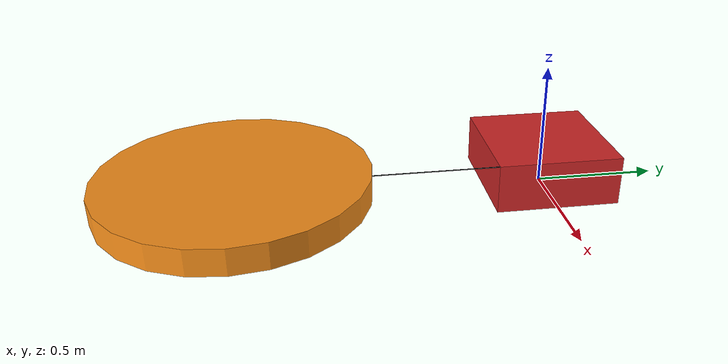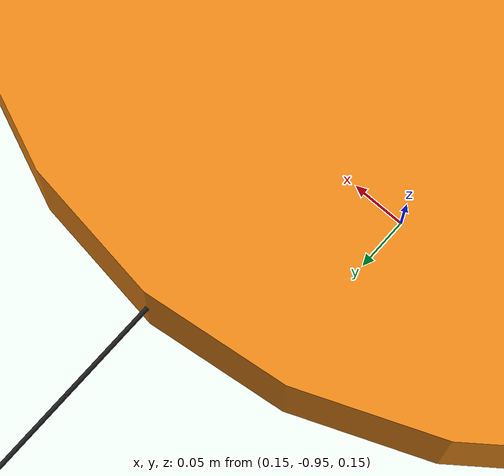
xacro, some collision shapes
<?xml version="1.0"?>

<!--

Gazebo Multirotor Definition File
Author: James Jackson (Original author)

-->

<robot name="multirotor"
    xmlns:xacro="http://ros.org/wiki/xacro">
    <!-- Properties -->
    <xacro:arg name="vehicle_name" default="dega_base"/>
    <xacro:arg name="color" default="Orange"/>

    <xacro:property name="namespace" value="$(arg vehicle_name)" />
    <xacro:property name="use_mesh_file" value="true" />
    <xacro:property name="mesh_file" value="model://qrotor_gazebo/meshes/dega.dae" />

    <!-- load dimensions -->
    <xacro:property name="load_mass" value="2" />
    <xacro:property name="load_length" value="0.5" />
    <xacro:property name="load_width" value="0.5" />
    <xacro:property name="load_height" value="0.2" />
    <xacro:property name="cable_length" value="1" />
    <xacro:property name="cable_radius" value="0.002" />
    <xacro:property name="cable_mass" value="0.01" />

    <xacro:property name="N" value="5"/>
    <xacro:property name="seg_length" value="${cable_length/N}" />
    <xacro:property name="seg_mass" value="${cable_mass/N}" />

    <xacro:property name="PI" value="3.1415926535897931"/>
    <xacro:property name="mass" value="0.9" />
    <xacro:property name="body_width" value="0.505" />
    <xacro:property name="body_height" value="0.1" />
    <xacro:property name="body_inertia">
        <inertia ixx="0.0049" ixy="0.0000055" ixz="0.0000054" iyy="0.0053" iyz="0.000021" izz="0.0098" />
    </xacro:property>
    <xacro:property name="color" value="$(arg color)" />
    <!-- Size of square 'camera' box -->
    <xacro:property name="camera_length" value="0.01" />
    <xacro:property name="camera_width" value="0.05" />
    <xacro:property name="camera_height" value="0.015" />
    <!-- Space btw top of beam and the each joint -->
    <xacro:property name="camera_offset" value="0.035" />

    <!-- MACRO: dummy link to create 3D rotation (in Euler Angles) -->
    <xacro:macro name="dummy_link" params="name">
        <link name="${name}">
            <gravity>0</gravity>
            <inertial>
                <origin rpy="0 0 0" xyz="0 0 0"/>
                <mass value="0.00001"/>
                <inertia ixx="0.000000001" ixy="0" ixz="0" iyy="0.000000001" iyz="0" izz="0.000000001"/>
            </inertial>
            <visual>
                <geometry>
                    <sphere radius="0.00000"/>
                </geometry>
            </visual>
        </link>
        <gazebo reference="${name}">
            <material>Gazebo/Black</material>
        </gazebo>
    </xacro:macro>

    <!-- MACRO: create a rotational joint ( TODO: debug this joint) -->
    <xacro:macro name="rotational_joint" params="parent child jx jy jz r p y">
        <xacro:dummy_link name="${parent}_${child}_dummylink1"/>
        <xacro:dummy_link name="${parent}_${child}_dummylink2"/>

        <joint name="${parent}_${child}_roll" type="continuous">
            <parent link="${parent}"/>
            <child link="${parent}_${child}_dummylink1"/>
            <axis xyz="1 0 0"/>
            <joint_properties damping="0.1" friction="0.0" />
            <origin xyz="${jx} ${jy} ${jz}" rpy="${r} 0 0"/>
        </joint>
        <joint name="${parent}_${child}_pitch" type="continuous">
            <parent link="${parent}_${child}_dummylink1"/>
            <child link="${parent}_${child}_dummylink2"/>
            <axis xyz="0 1 0"/>
            <joint_properties damping="0.1" friction="0.0" />
            <origin xyz="0 0 0" rpy="0 ${p} 0"/>
        </joint>
        <joint name="${parent}_${child}_yaw" type="continuous">
            <parent link="${parent}_${child}_dummylink2"/>
            <child link="${child}"/>
            <axis xyz="0 0 1"/>
            <joint_properties damping="0.1" friction="0.0" />
            <origin xyz="0 0 0" rpy="0 0 ${y}"/>
        </joint>
    </xacro:macro>

    <!-- gazebo robot description -->
    <link name="${namespace}/base_link">
        <inertial>
            <mass value="${mass}" />
            <!-- [kg] -->
            <origin xyz="0 0 0" />
            <xacro:insert_block name="body_inertia" />
        </inertial>

        <visual>
            <origin xyz="0 0 0" rpy="0 0 ${-PI/2}"/>
            <geometry>
                <mesh filename="package://qrotor_description/meshes/dega.dae" scale="0.001 0.001 0.001"/>
            </geometry>
            <material name="orange"/>
        </visual>

        <collision>
            <origin xyz="0 0 0" rpy="0 0 0" />
            <geometry>
                <cylinder length="${body_height}" radius="${body_width}"/>
            </geometry>
        </collision>
    </link>
    <gazebo reference="${namespace}/base_link">
        <material>Gazebo/${color}</material>
    </gazebo>

    <!-- Qrotorflight SIL Plugin -->
    <xacro:include filename="$(find qrotor_gazebo)/xacro/qrotor_gazebo.xacro"/>
    <xacro:generic_multirotor namespace="${namespace}" parent_link="${namespace}/base_link"/>

    <!-- Camera joint (fixed to the drone-frame) -->
    <joint name="${namespace}/camera_joint" type="fixed">
        <origin xyz="${camera_length} 0 ${-camera_offset}" rpy="0 ${PI/4} ${PI/2}"/>
        <parent link="${namespace}/base_link"/>
        <child link="${namespace}/camera_link"/>
    </joint>
    <joint name="${namespace}/camera_optical_joint" type="fixed">
        <origin xyz="0 0 0" rpy="${-pi/2} 0 ${-pi/2}"/>
        <parent link="${namespace}/camera_link"/>
        <child link="${namespace}/camera_link_optical"/>
    </joint>
    <link name="${namespace}/camera_link_optical">
        <inertial>
            <mass value="1e-5" />
            <origin xyz="0 0 0" rpy="0 0 0"/>
            <inertia ixx="1e-6" ixy="0" ixz="0" iyy="1e-6" iyz="0" izz="1e-6" />
        </inertial>
    </link>

    <!-- Camera -->
    <link name="${namespace}/camera_link">
        <collision>
            <origin xyz="0 0 0" rpy="0 0 0"/>
            <geometry>
                <box size="${camera_length} ${camera_width} ${camera_height}"/>
            </geometry>
        </collision>
        <visual>
            <origin xyz="0 0 0" rpy="0 0 0"/>
            <geometry>
                <box size="${camera_length} ${camera_width} ${camera_height}"/>
            </geometry>
            <material name="red"/>
        </visual>
        <inertial>
            <mass value="1e-5" />
            <origin xyz="0 0 0" rpy="0 0 0"/>
            <inertia ixx="1e-6" ixy="0" ixz="0" iyy="1e-6" iyz="0" izz="1e-6" />
        </inertial>
    </link>
    <!-- camera -->
    <gazebo reference="${namespace}/camera_link">
        <material>Gazebo/Red</material>
        <sensor type="camera" name="color_camera">
            <update_rate>30.0</update_rate>
            <camera name="head">
                <horizontal_fov>1.3962634</horizontal_fov>
                <image>
                    <width>800</width>
                    <height>800</height>
                    <format>R8G8B8</format>
                </image>
                <clip>
                    <near>0.02</near>
                    <far>300</far>
                </clip>
                <noise>
                    <type>gaussian</type>
                    <!-- Noise is sampled independently per pixel on each frame.
               That pixel's noise value is added to each of its color
               channels, which at that point lie in the range [0,1]. -->
                    <mean>0.0</mean>
                    <stddev>0.007</stddev>
                </noise>
            </camera>
            <plugin name="camera_controller" filename="libgazebo_ros_camera.so">
                <alwaysOn>true</alwaysOn>
                <updateRate>0.0</updateRate>
                <cameraName>camera</cameraName>
                <imageTopicName>image_raw</imageTopicName>
                <cameraInfoTopicName>camera_info</cameraInfoTopicName>
                <frameName>camera_link</frameName>
                <hackBaseline>0.07</hackBaseline>
                <distortionK1>0.0</distortionK1>
                <distortionK2>0.0</distortionK2>
                <distortionK3>0.0</distortionK3>
                <distortionT1>0.0</distortionT1>
                <distortionT2>0.0</distortionT2>
            </plugin>
        </sensor>
    </gazebo>

    <link name="payload_link">
        <collision>
            <origin xyz="0 0 ${load_height/2}" rpy="0 0 0"/>
            <geometry>
                <box size="${load_length} ${load_width} ${load_height}"/>
            </geometry>
            <surface>
                <bounce restitution_coefficient = "0"/>
            </surface>
        </collision>
        <visual>
            <origin xyz="0 0 ${load_height/2}" rpy="0 0 ${-PI/2}"/>
            <geometry>
                <mesh filename="file:///$(find qrotor_description)/meshes/arcuo.dae" scale="${load_length*0.5} ${load_width*0.5} ${load_height*0.5}"/>
            </geometry>
            <material name="red"/>
        </visual>
        <inertial>
            <origin xyz="0 0 ${load_height/2}" rpy="0 0 0"/>
            <mass value="${load_mass}"/>
            <inertia ixx="0.1" ixy="0.0" ixz="0.0" iyy="0.1" iyz="0.0" izz="0.4"/>
        </inertial>
    </link>
    <xacro:rigidbody_plugin namespace="payload" parent_link="payload_link"/>

    <xacro:macro name="cable_segment" params="index">
        <link name="segment${index}">
            <collision>
                <origin xyz="0 0 ${seg_length/2}" rpy="0 0 0"/>
                <geometry>
                    <cylinder length="${seg_length}" radius="${cable_radius}"/>
                </geometry>
            </collision>
            <visual>
                <origin xyz="0 0 ${seg_length/2}" rpy="0 0 0"/>
                <geometry>
                    <cylinder length="${seg_length}" radius="${cable_radius}"/>
                </geometry>
            </visual>
            <inertial>
                <origin xyz="0 0 ${seg_length/2}" rpy="0 0 0"/>
                <mass value="${seg_mass}"/>
                <!-- TODO fix the inertia -->
                <inertia ixx="0.0001" ixy="0.0" ixz="0.0" iyy="0.0001" iyz="0.0" izz="0.0004"/>
            </inertial>
        </link>
        <gazebo reference="segment${index}">
            <material>Gazebo/Black</material>
            <kp>10.0</kp>
            <kd>1</kd>
            <mu1>1.0</mu1>
            <mu2>1.0</mu2>
            <maxVel>0.0</maxVel>
            <minDepth>0.001</minDepth>
            <collision>
                <max_contacts>10</max_contacts>
                <surface>
                    <bounce>
                        <restitution_coefficient>0.0</restitution_coefficient>
                        <threshold>0.01</threshold>
                    </bounce>
                </surface>
            </collision>
        </gazebo>
    </xacro:macro>

    <xacro:cable_segment index="1"/>
    <xacro:rotational_joint parent="payload_link" child="segment1" jx="${load_length/2}" jy="-${load_width/2}" jz="${load_height}" r="${PI/2}" p="0" y="0"/>
    <xacro:cable_segment index="2"/>
    <xacro:rotational_joint parent="segment1" child="segment2" jx="0" jy="0" jz="${seg_length}" r="0" p="0" y="0"/>
    <xacro:cable_segment index="3"/>
    <xacro:rotational_joint parent="segment2" child="segment3" jx="0" jy="0" jz="${seg_length}" r="0" p="0" y="0"/>
    <xacro:cable_segment index="4"/>
    <xacro:rotational_joint parent="segment3" child="segment4" jx="0" jy="0" jz="${seg_length}" r="0" p="0" y="0"/>
    <xacro:cable_segment index="5"/>
    <xacro:rotational_joint parent="segment4" child="segment5" jx="0" jy="0" jz="${seg_length}" r="0" p="0" y="0"/>
    <xacro:rotational_joint parent="segment5" child="${namespace}/base_link" jx="0" jy="0" jz="${seg_length}" r="${-PI/2}" p="0" y="0"/>

</robot>
